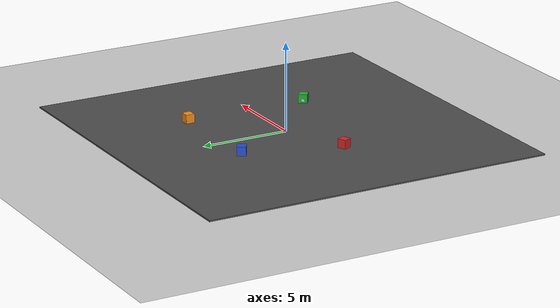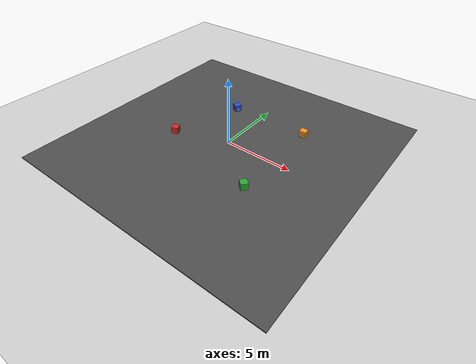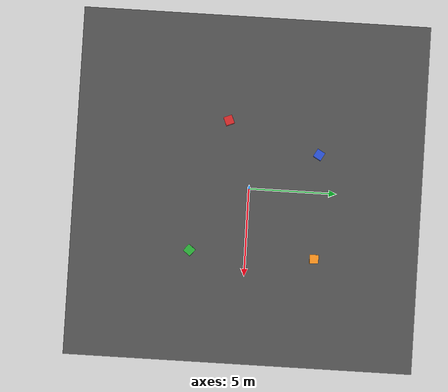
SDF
<sdf version="1.7">
 <world name="default">
  <light name="sun" type="directional">
   <pose>0 0 10 0 -0 0</pose>
   <diffuse>0.8 0.8 0.8 1</diffuse>
   <specular>0.2 0.2 0.2 1</specular>
   <attenuation>
    <range>1000</range>
    <constant>0.9</constant>
    <linear>0.01</linear>
    <quadratic>0.001</quadratic>
   </attenuation>
   <direction>-0.5 0.1 -0.9</direction>
   <spot><inner_angle>0</inner_angle><outer_angle>0</outer_angle><falloff>0</falloff></spot>
  </light>
  <model name="ground_plane">
   <static>1</static>
   <link name="link">
    <collision name="collision">
     <geometry><plane><normal>0 0 1</normal><size>100 100</size></plane></geometry>
     <surface><friction><ode><mu>100</mu><mu2>50</mu2></ode></friction></surface>
    </collision>
    <visual name="visual">
     <cast_shadows>0</cast_shadows>
     <geometry><plane><normal>0 0 1</normal><size>100 100</size></plane></geometry>
     <material>
      <script><uri>file://media/materials/scripts/gazebo.material</uri><name>Gazebo/Grey</name></script>
     </material>
    </visual>
    <velocity_decay><linear>0</linear><angular>0</angular></velocity_decay>
   </link>
  </model>
  <physics type="ode">
   <max_step_size>0.01</max_step_size>
   <real_time_factor>1</real_time_factor>
   <real_time_update_rate>100</real_time_update_rate>
  </physics>
  <scene><ambient>0.4 0.4 0.4 1</ambient><background>0.7 0.7 0.7 1</background><shadows>1</shadows></scene>
  <model name="asphalt_plane">
   <static>1</static>
   <link name="link">
    <collision name="collision"><geometry><box><size>20 20 0.1</size></box></geometry></collision>
    <visual name="visual">
     <cast_shadows>0</cast_shadows>
     <geometry><box><size>20 20 0.1</size></box></geometry>
     <material>
      <script>
       <uri>model://asphalt_plane/materials/scripts</uri>
       <uri>model://asphalt_plane/materials/textures</uri>
       <name>vrc/asphalt</name>
      </script>
     </material>
    </visual>
    <velocity_decay><linear>0</linear><angular>0</angular></velocity_decay>
   </link>
   <pose>0.066923 -0.093213 0 0 -0 0</pose>
  </model>
  <gravity>0 0 -9.8</gravity>
  <magnetic_field>6e-06 2.3e-05 -4.2e-05</magnetic_field>
  <atmosphere type="adiabatic"/>
  <spherical_coordinates>
   <surface_model>EARTH_WGS84</surface_model>
   <latitude_deg>0</latitude_deg>
   <longitude_deg>0</longitude_deg>
   <elevation>0</elevation>
   <heading_deg>0</heading_deg>
  </spherical_coordinates>
  <model name="tagged_green_box">
   <static>0</static>
   <link name="link">
    <inertial>
     <mass>1</mass>
     <inertia><ixx>0.166</ixx><iyy>0.166</iyy><izz>0.166</izz><ixy>0</ixy><ixz>0</ixz><iyz>0</iyz></inertia>
    </inertial>
    <visual name="top_visual">
     <pose>0 0 0.25 0 -0 0</pose>
     <geometry><box><size>0.5 0.5 0.001</size></box></geometry>
     <material>
      <script>
       <uri>model://tagged_green_box/materials/scripts</uri>
       <uri>model://tagged_green_box/materials/textures</uri>
       <name>TaggedGreenBox/Materials/GreenSide</name>
      </script>
     </material>
    </visual>
    <visual name="bottom_visual">
     <pose>0 0 -0.25 0 -0 0</pose>
     <geometry><box><size>0.5 0.5 0.001</size></box></geometry>
     <material>
      <script>
       <uri>model://tagged_green_box/materials/scripts</uri>
       <uri>model://tagged_green_box/materials/textures</uri>
       <name>TaggedGreenBox/Materials/GreenSide</name>
      </script>
     </material>
    </visual>
    <visual name="front_visual">
     <pose>0.25 0 0 0 -0 0</pose>
     <geometry><box><size>0.001 0.5 0.5</size></box></geometry>
     <material>
      <script>
       <uri>model://tagged_green_box/materials/scripts</uri>
       <uri>model://tagged_green_box/materials/textures</uri>
       <name>TaggedGreenBox/Materials/GreenSide</name>
      </script>
     </material>
    </visual>
    <visual name="back_visual">
     <pose>-0.25 0 0 0 -0 0</pose>
     <geometry><box><size>0.001 0.5 0.5</size></box></geometry>
     <material>
      <script>
       <uri>model://tagged_green_box/materials/scripts</uri>
       <uri>model://tagged_green_box/materials/textures</uri>
       <name>TaggedGreenBox/Materials/GreenSide</name>
      </script>
     </material>
    </visual>
    <visual name="right_visual">
     <pose>0 0.25 0 0 -0 0</pose>
     <geometry><box><size>0.5 0.001 0.5</size></box></geometry>
     <material>
      <script>
       <uri>model://tagged_green_box/materials/scripts</uri>
       <uri>model://tagged_green_box/materials/textures</uri>
       <name>TaggedGreenBox/Materials/GreenSide</name>
      </script>
     </material>
    </visual>
    <visual name="left_visual">
     <pose>0 -0.25 0 0 -0 0</pose>
     <geometry><box><size>0.5 0.001 0.5</size></box></geometry>
     <material>
      <script>
       <uri>model://tagged_green_box/materials/scripts</uri>
       <uri>model://tagged_green_box/materials/textures</uri>
       <name>TaggedGreenBox/Materials/GreenSide</name>
      </script>
     </material>
    </visual>
    <visual name="apritag_plate_visual">
     <pose>0.251 0 -0.1 0 -0 0</pose>
     <geometry><box><size>0.001 0.2 0.2</size></box></geometry>
     <material>
      <script>
       <uri>model://tagged_green_box/materials/scripts</uri>
       <uri>model://tagged_green_box/materials/textures</uri>
       <name>TaggedGreenBox/Materials/AprilTagSide</name>
      </script>
     </material>
    </visual>
    <collision name="collision"><geometry><box><size>0.5 0.5 0.5</size></box></geometry></collision>
   </link>
   <pose>3.71108 -3.20032 0.3 0 -0 2.45699</pose>
  </model>
  <model name="tagged_blue_box">
   <static>0</static>
   <link name="link">
    <inertial>
     <mass>1</mass>
     <inertia><ixx>0.166</ixx><iyy>0.166</iyy><izz>0.166</izz><ixy>0</ixy><ixz>0</ixz><iyz>0</iyz></inertia>
    </inertial>
    <visual name="top_visual">
     <pose>0 0 0.25 0 -0 0</pose>
     <geometry><box><size>0.5 0.5 0.001</size></box></geometry>
     <material>
      <script>
       <uri>model://tagged_blue_box/materials/scripts</uri>
       <uri>model://tagged_blue_box/materials/textures</uri>
       <name>TaggedBlueBox/Materials/BlueSide</name>
      </script>
     </material>
    </visual>
    <visual name="bottom_visual">
     <pose>0 0 -0.25 0 -0 0</pose>
     <geometry><box><size>0.5 0.5 0.001</size></box></geometry>
     <material>
      <script>
       <uri>model://tagged_blue_box/materials/scripts</uri>
       <uri>model://tagged_blue_box/materials/textures</uri>
       <name>TaggedBlueBox/Materials/BlueSide</name>
      </script>
     </material>
    </visual>
    <visual name="front_visual">
     <pose>0.25 0 0 0 -0 0</pose>
     <geometry><box><size>0.001 0.5 0.5</size></box></geometry>
     <material>
      <script>
       <uri>model://tagged_blue_box/materials/scripts</uri>
       <uri>model://tagged_blue_box/materials/textures</uri>
       <name>TaggedBlueBox/Materials/BlueSide</name>
      </script>
     </material>
    </visual>
    <visual name="back_visual">
     <pose>-0.25 0 0 0 -0 0</pose>
     <geometry><box><size>0.001 0.5 0.5</size></box></geometry>
     <material>
      <script>
       <uri>model://tagged_blue_box/materials/scripts</uri>
       <uri>model://tagged_blue_box/materials/textures</uri>
       <name>TaggedBlueBox/Materials/BlueSide</name>
      </script>
     </material>
    </visual>
    <visual name="right_visual">
     <pose>0 0.25 0 0 -0 0</pose>
     <geometry><box><size>0.5 0.001 0.5</size></box></geometry>
     <material>
      <script>
       <uri>model://tagged_blue_box/materials/scripts</uri>
       <uri>model://tagged_blue_box/materials/textures</uri>
       <name>TaggedBlueBox/Materials/BlueSide</name>
      </script>
     </material>
    </visual>
    <visual name="left_visual">
     <pose>0 -0.25 0 0 -0 0</pose>
     <geometry><box><size>0.5 0.001 0.5</size></box></geometry>
     <material>
      <script>
       <uri>model://tagged_blue_box/materials/scripts</uri>
       <uri>model://tagged_blue_box/materials/textures</uri>
       <name>TaggedBlueBox/Materials/BlueSide</name>
      </script>
     </material>
    </visual>
    <visual name="apritag_plate_visual">
     <pose>0.251 0 -0.1 0 -0 0</pose>
     <geometry><box><size>0.001 0.2 0.2</size></box></geometry>
     <material>
      <script>
       <uri>model://tagged_blue_box/materials/scripts</uri>
       <uri>model://tagged_blue_box/materials/textures</uri>
       <name>TaggedBlueBox/Materials/AprilTagSide</name>
      </script>
     </material>
    </visual>
    <collision name="collision"><geometry><box><size>0.5 0.5 0.5</size></box></geometry></collision>
   </link>
   <pose>-2.18718 3.89345 0.3 -0 -0 -0.506471</pose>
  </model>
  <model name="tagged_red_box">
   <static>0</static>
   <link name="link">
    <inertial>
     <mass>1</mass>
     <inertia><ixx>0.166</ixx><iyy>0.166</iyy><izz>0.166</izz><ixy>0</ixy><ixz>0</ixz><iyz>0</iyz></inertia>
    </inertial>
    <visual name="top_visual">
     <pose>0 0 0.25 0 -0 0</pose>
     <geometry><box><size>0.5 0.5 0.001</size></box></geometry>
     <material>
      <script>
       <uri>model://tagged_red_box/materials/scripts</uri>
       <uri>model://tagged_red_box/materials/textures</uri>
       <name>TaggedRedBox/Materials/RedSide</name>
      </script>
     </material>
    </visual>
    <visual name="bottom_visual">
     <pose>0 0 -0.25 0 -0 0</pose>
     <geometry><box><size>0.5 0.5 0.001</size></box></geometry>
     <material>
      <script>
       <uri>model://tagged_red_box/materials/scripts</uri>
       <uri>model://tagged_red_box/materials/textures</uri>
       <name>TaggedRedBox/Materials/RedSide</name>
      </script>
     </material>
    </visual>
    <visual name="front_visual">
     <pose>0.25 0 0 0 -0 0</pose>
     <geometry><box><size>0.001 0.5 0.5</size></box></geometry>
     <material>
      <script>
       <uri>model://tagged_red_box/materials/scripts</uri>
       <uri>model://tagged_red_box/materials/textures</uri>
       <name>TaggedRedBox/Materials/RedSide</name>
      </script>
     </material>
    </visual>
    <visual name="back_visual">
     <pose>-0.25 0 0 0 -0 0</pose>
     <geometry><box><size>0.001 0.5 0.5</size></box></geometry>
     <material>
      <script>
       <uri>model://tagged_red_box/materials/scripts</uri>
       <uri>model://tagged_red_box/materials/textures</uri>
       <name>TaggedRedBox/Materials/RedSide</name>
      </script>
     </material>
    </visual>
    <visual name="right_visual">
     <pose>0 0.25 0 0 -0 0</pose>
     <geometry><box><size>0.5 0.001 0.5</size></box></geometry>
     <material>
      <script>
       <uri>model://tagged_red_box/materials/scripts</uri>
       <uri>model://tagged_red_box/materials/textures</uri>
       <name>TaggedRedBox/Materials/RedSide</name>
      </script>
     </material>
    </visual>
    <visual name="left_visual">
     <pose>0 -0.25 0 0 -0 0</pose>
     <geometry><box><size>0.5 0.001 0.5</size></box></geometry>
     <material>
      <script>
       <uri>model://tagged_red_box/materials/scripts</uri>
       <uri>model://tagged_red_box/materials/textures</uri>
       <name>TaggedRedBox/Materials/RedSide</name>
      </script>
     </material>
    </visual>
    <visual name="apritag_plate_visual">
     <pose>0.251 0 -0.1 0 -0 0</pose>
     <geometry><box><size>0.001 0.2 0.2</size></box></geometry>
     <material>
      <script>
       <uri>model://tagged_red_box/materials/scripts</uri>
       <uri>model://tagged_red_box/materials/textures</uri>
       <name>TaggedRedBox/Materials/AprilTagSide</name>
      </script>
     </material>
    </visual>
    <collision name="collision"><geometry><box><size>0.5 0.5 0.5</size></box></geometry></collision>
   </link>
   <pose>-3.85454 -1.38655 0.3 0 -0 0.39247</pose>
  </model>
  <model name="tagged_orange_box">
   <static>0</static>
   <link name="link">
    <inertial>
     <mass>1</mass>
     <inertia><ixx>0.166</ixx><iyy>0.166</iyy><izz>0.166</izz><ixy>0</ixy><ixz>0</ixz><iyz>0</iyz></inertia>
    </inertial>
    <visual name="top_visual">
     <pose>0 0 0.25 0 -0 0</pose>
     <geometry><box><size>0.5 0.5 0.001</size></box></geometry>
     <material>
      <script>
       <uri>model://tagged_orange_box/materials/scripts</uri>
       <uri>model://tagged_orange_box/materials/textures</uri>
       <name>TaggedOrangeBox/Materials/OrangeSide</name>
      </script>
     </material>
    </visual>
    <visual name="bottom_visual">
     <pose>0 0 -0.25 0 -0 0</pose>
     <geometry><box><size>0.5 0.5 0.001</size></box></geometry>
     <material>
      <script>
       <uri>model://tagged_orange_box/materials/scripts</uri>
       <uri>model://tagged_orange_box/materials/textures</uri>
       <name>TaggedOrangeBox/Materials/OrangeSide</name>
      </script>
     </material>
    </visual>
    <visual name="front_visual">
     <pose>0.25 0 0 0 -0 0</pose>
     <geometry><box><size>0.001 0.5 0.5</size></box></geometry>
     <material>
      <script>
       <uri>model://tagged_orange_box/materials/scripts</uri>
       <uri>model://tagged_orange_box/materials/textures</uri>
       <name>TaggedOrangeBox/Materials/OrangeSide</name>
      </script>
     </material>
    </visual>
    <visual name="back_visual">
     <pose>-0.25 0 0 0 -0 0</pose>
     <geometry><box><size>0.001 0.5 0.5</size></box></geometry>
     <material>
      <script>
       <uri>model://tagged_orange_box/materials/scripts</uri>
       <uri>model://tagged_orange_box/materials/textures</uri>
       <name>TaggedOrangeBox/Materials/OrangeSide</name>
      </script>
     </material>
    </visual>
    <visual name="right_visual">
     <pose>0 0.25 0 0 -0 0</pose>
     <geometry><box><size>0.5 0.001 0.5</size></box></geometry>
     <material>
      <script>
       <uri>model://tagged_orange_box/materials/scripts</uri>
       <uri>model://tagged_orange_box/materials/textures</uri>
       <name>TaggedOrangeBox/Materials/OrangeSide</name>
      </script>
     </material>
    </visual>
    <visual name="left_visual">
     <pose>0 -0.25 0 0 -0 0</pose>
     <geometry><box><size>0.5 0.001 0.5</size></box></geometry>
     <material>
      <script>
       <uri>model://tagged_orange_box/materials/scripts</uri>
       <uri>model://tagged_orange_box/materials/textures</uri>
       <name>TaggedOrangeBox/Materials/OrangeSide</name>
      </script>
     </material>
    </visual>
    <visual name="apritag_plate_visual">
     <pose>0.251 0 -0.1 0 -0 0</pose>
     <geometry><box><size>0.001 0.2 0.2</size></box></geometry>
     <material>
      <script>
       <uri>model://tagged_orange_box/materials/scripts</uri>
       <uri>model://tagged_orange_box/materials/textures</uri>
       <name>TaggedOrangeBox/Materials/AprilTagSide</name>
      </script>
     </material>
    </visual>
    <collision name="collision"><geometry><box><size>0.5 0.5 0.5</size></box></geometry></collision>
   </link>
   <pose>3.79711 3.95117 0.3 -0 -0 -1.55186</pose>
  </model>
 </world>
</sdf>
